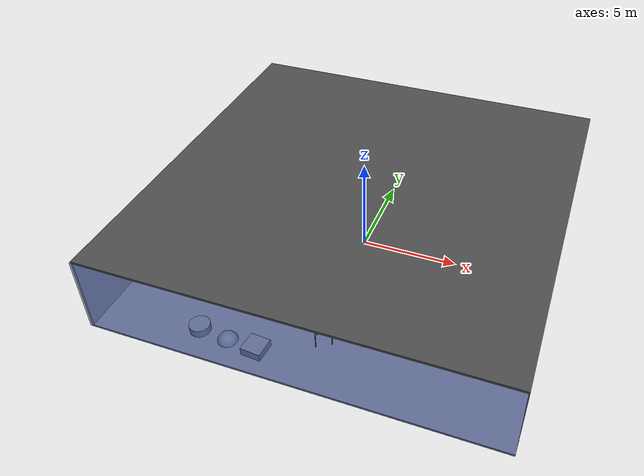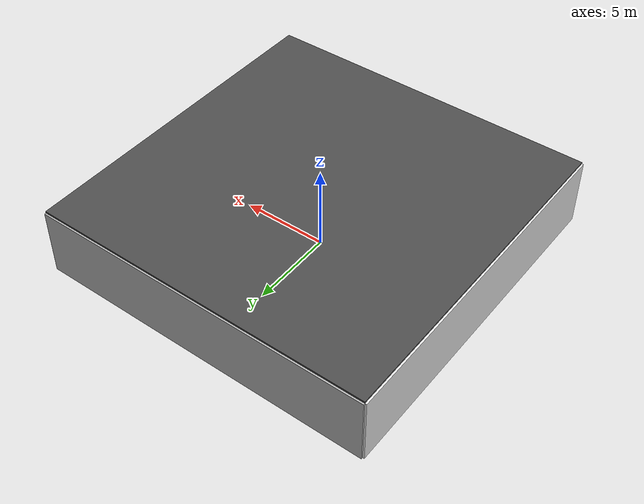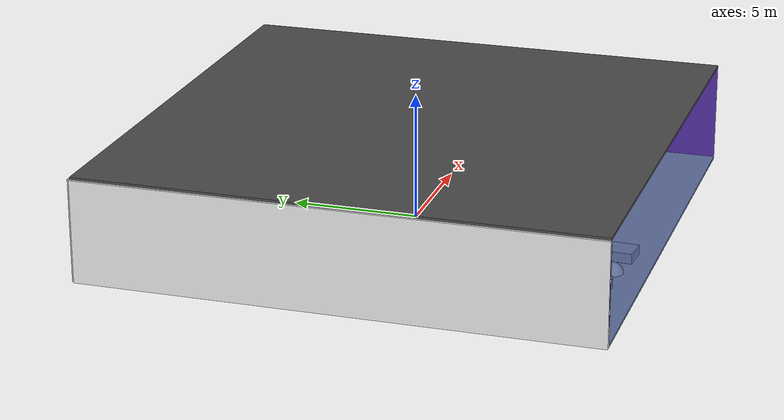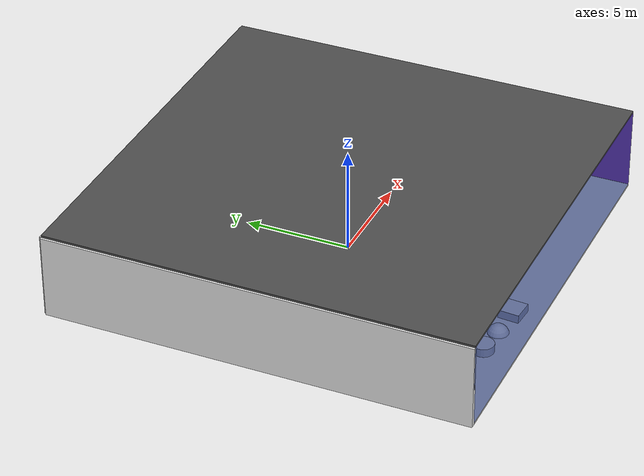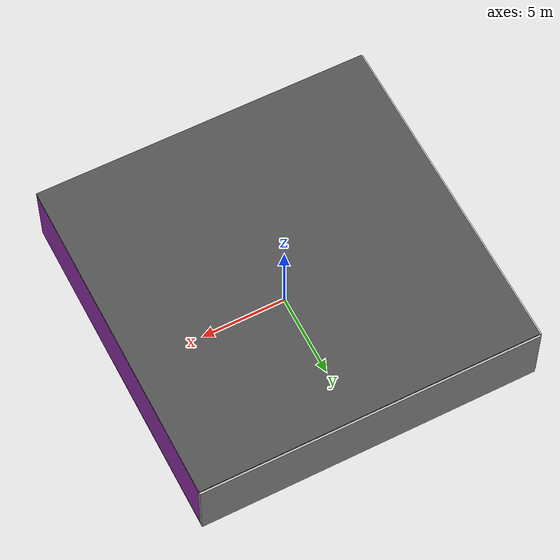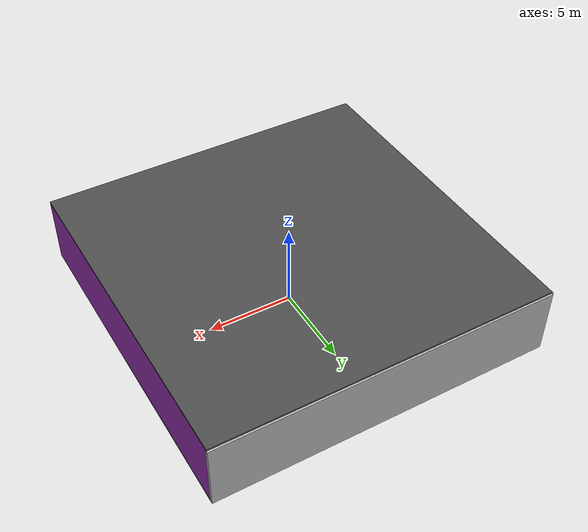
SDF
<sdf version="1.4">
 <world name="default">
  <physics type="ode">
   <max_step_size>0.001</max_step_size>
   <real_time_factor>1</real_time_factor>
   <real_time_update_rate>1000</real_time_update_rate>
   <gravity>0 0 -9.8</gravity>
  </physics>
  <scene><ambient>0.4 0.4 0.4 1</ambient><background>0.7 0.7 0.7 1</background><shadows>1</shadows></scene>
  <model name="Surrounding">
   <static>1</static>
   <link name="Ceiling">
    <collision name="Ceiling_Collision"><geometry><box><size>20 20 0.1</size></box></geometry></collision>
    <visual name="Ceiling_Visual">
     <geometry><box><size>20 20 0.1</size></box></geometry>
     <material>
      <script><uri>file://media/materials/scripts/gazebo.material</uri><name>Gazebo/DarkGrey</name></script>
     </material>
    </visual>
    <pose>0 0 4.05 0 0 0</pose>
   </link>
   <link name="Wall_South">
    <collision name="Wall_South_Collision">
     <geometry><box><size>20 0 4</size></box></geometry>
     <pose>0 0 2 0 -0 0</pose>
    </collision>
    <visual name="Wall_South_Visual">
     <pose>0 0 2 0 -0 0</pose>
     <geometry><box><size>20 0 4</size></box></geometry>
     <material>
      <script><uri>file://media/materials/scripts/gazebo.material</uri><name>Gazebo/BlueTransparent</name></script>
     </material>
    </visual>
    <velocity_decay><linear>0</linear><angular>0</angular></velocity_decay>
    <pose>0 -10 0 0 -0 0</pose>
   </link>
   <link name="Wall_East">
    <collision name="Wall_21_Collision">
     <geometry><box><size>20 0 4</size></box></geometry>
     <pose>0 0 2 0 -0 0</pose>
    </collision>
    <visual name="Wall_21_Visual">
     <pose>0 0 2 0 -0 0</pose>
     <geometry><box><size>20 0 4</size></box></geometry>
     <material>
      <script><uri>file://media/materials/scripts/gazebo.material</uri><name>Gazebo/Purple</name></script>
     </material>
    </visual>
    <velocity_decay><linear>0</linear><angular>0</angular></velocity_decay>
    <pose>10 0 0 0 -0 1.5708</pose>
   </link>
   <link name="Wall_North">
    <collision name="Wall_22_Collision">
     <geometry><box><size>20 0.2 4</size></box></geometry>
     <pose>0 0 2 0 -0 0</pose>
    </collision>
    <visual name="Wall_22_Visual">
     <pose>0 0 2 0 -0 0</pose>
     <geometry><box><size>20 0.2 4</size></box></geometry>
     <material>
      <script><uri>file://media/materials/scripts/gazebo.material</uri><name>Gazebo/CloudySky</name></script>
     </material>
    </visual>
    <velocity_decay><linear>0</linear><angular>0</angular></velocity_decay>
    <pose>0 10 0 0 -0 0</pose>
   </link>
   <link name="Wall_West">
    <collision name="Wall_23_Collision">
     <geometry><box><size>20 0.2 4</size></box></geometry>
     <pose>0 0 2 0 -0 0</pose>
    </collision>
    <visual name="Wall_23_Visual">
     <pose>0 0 2 0 -0 0</pose>
     <geometry><box><size>20 0.2 4</size></box></geometry>
     <material>
      <script><uri>file://media/materials/scripts/gazebo.material</uri><name>Gazebo/WhiteGlow</name></script>
     </material>
    </visual>
    <velocity_decay><linear>0</linear><angular>0</angular></velocity_decay>
    <pose>-10 0 0 0 0 -1.5708</pose>
   </link>
   <link name="Ground_link">
    <collision name="collision">
     <pose>0 0 .05 0 -0 0</pose>
     <geometry><box><size>20 20 0.1</size></box></geometry>
    </collision>
    <visual name="visual">
     <pose>0 0 .05 0 -0 0</pose>
     <geometry><box><size>20 20 0.1</size></box></geometry>
     <material>
      <script><uri>file://media/materials/scripts/gazebo.material</uri><name>Gazebo/CloudySky</name></script>
     </material>
    </visual>
   </link>
   <static>1</static>
  </model>
  <spherical_coordinates>
   <surface_model>EARTH_WGS84</surface_model>
   <latitude_deg>0</latitude_deg>
   <longitude_deg>0</longitude_deg>
   <elevation>0</elevation>
   <heading_deg>0</heading_deg>
  </spherical_coordinates>
  <light name="lightball_0" type="diffuse">
   <diffuse>0.8 0.8 0.8 1</diffuse>
   <specular>0.2 0.2 0.2 1</specular>
   <attenuation>
    <range>100</range>
    <constant>0.7</constant>
    <linear>0.01</linear>
    <quadratic>0.001</quadratic>
   </attenuation>
   <direction>-0.5 0.1 -0.9</direction>
   <pose>-0.96545309168 -0.755401192994 0.842638630809 0 0 0</pose>
  </light>
  <light name="lightball_1" type="diffuse">
   <diffuse>0.8 0.8 0.8 1</diffuse>
   <specular>0.2 0.2 0.2 1</specular>
   <attenuation>
    <range>100</range>
    <constant>0.7</constant>
    <linear>0.01</linear>
    <quadratic>0.001</quadratic>
   </attenuation>
   <direction>-0.5 0.1 -0.9</direction>
   <pose>-8.41131722383 -9.84102624976 3.89285093391 0 0 0</pose>
  </light>
  <light name="lightball_2" type="diffuse">
   <diffuse>0.8 0.8 0.8 1</diffuse>
   <specular>0.2 0.2 0.2 1</specular>
   <attenuation>
    <range>100</range>
    <constant>0.7</constant>
    <linear>0.01</linear>
    <quadratic>0.001</quadratic>
   </attenuation>
   <direction>-0.5 0.1 -0.9</direction>
   <pose>-1.53360866893 4.70353008135 2.87026435611 0 0 0</pose>
  </light>
  <light name="lightball_3" type="diffuse">
   <diffuse>0.8 0.8 0.8 1</diffuse>
   <specular>0.2 0.2 0.2 1</specular>
   <attenuation>
    <range>100</range>
    <constant>0.7</constant>
    <linear>0.01</linear>
    <quadratic>0.001</quadratic>
   </attenuation>
   <direction>-0.5 0.1 -0.9</direction>
   <pose>1.42232622898 -0.174910329536 1.30854168114 0 0 0</pose>
  </light>
  <light name="lightball_4" type="diffuse">
   <diffuse>0.8 0.8 0.8 1</diffuse>
   <specular>0.2 0.2 0.2 1</specular>
   <attenuation>
    <range>100</range>
    <constant>0.7</constant>
    <linear>0.01</linear>
    <quadratic>0.001</quadratic>
   </attenuation>
   <direction>-0.5 0.1 -0.9</direction>
   <pose>-1.76088937089 -1.54886287906 3.51439725264 0 0 0</pose>
  </light>
  <light name="lightball_5" type="diffuse">
   <diffuse>0.8 0.8 0.8 1</diffuse>
   <specular>0.2 0.2 0.2 1</specular>
   <attenuation>
    <range>100</range>
    <constant>0.7</constant>
    <linear>0.01</linear>
    <quadratic>0.001</quadratic>
   </attenuation>
   <direction>-0.5 0.1 -0.9</direction>
   <pose>-9.42797345507 -4.78476580257 1.17919871786 0 0 0</pose>
  </light>
  <light name="lightball_6" type="diffuse">
   <diffuse>0.8 0.8 0.8 1</diffuse>
   <specular>0.2 0.2 0.2 1</specular>
   <attenuation>
    <range>100</range>
    <constant>0.7</constant>
    <linear>0.01</linear>
    <quadratic>0.001</quadratic>
   </attenuation>
   <direction>-0.5 0.1 -0.9</direction>
   <pose>-7.94568962595 9.1109294531 2.52761606473 0 0 0</pose>
  </light>
  <light name="lightball_7" type="diffuse">
   <diffuse>0.8 0.8 0.8 1</diffuse>
   <specular>0.2 0.2 0.2 1</specular>
   <attenuation>
    <range>100</range>
    <constant>0.7</constant>
    <linear>0.01</linear>
    <quadratic>0.001</quadratic>
   </attenuation>
   <direction>-0.5 0.1 -0.9</direction>
   <pose>4.91228192512 6.41109465792 2.69414485384 0 0 0</pose>
  </light>
  <light name="lightball_8" type="diffuse">
   <diffuse>0.8 0.8 0.8 1</diffuse>
   <specular>0.2 0.2 0.2 1</specular>
   <attenuation>
    <range>100</range>
    <constant>0.7</constant>
    <linear>0.01</linear>
    <quadratic>0.001</quadratic>
   </attenuation>
   <direction>-0.5 0.1 -0.9</direction>
   <pose>-2.96364640514 3.88337945413 2.45359109621 0 0 0</pose>
  </light>
  <light name="lightball_9" type="diffuse">
   <diffuse>0.8 0.8 0.8 1</diffuse>
   <specular>0.2 0.2 0.2 1</specular>
   <attenuation>
    <range>100</range>
    <constant>0.7</constant>
    <linear>0.01</linear>
    <quadratic>0.001</quadratic>
   </attenuation>
   <direction>-0.5 0.1 -0.9</direction>
   <pose>9.3214838143 -0.146834557594 2.60453961742 0 0 0</pose>
  </light>
  <light name="lightball_10" type="diffuse">
   <diffuse>0.8 0.8 0.8 1</diffuse>
   <specular>0.2 0.2 0.2 1</specular>
   <attenuation>
    <range>100</range>
    <constant>0.7</constant>
    <linear>0.01</linear>
    <quadratic>0.001</quadratic>
   </attenuation>
   <direction>-0.5 0.1 -0.9</direction>
   <pose>1.21728304143 1.98042491229 3.71308196748 0 0 0</pose>
  </light>
  <light name="lightball_11" type="diffuse">
   <diffuse>0.8 0.8 0.8 1</diffuse>
   <specular>0.2 0.2 0.2 1</specular>
   <attenuation>
    <range>100</range>
    <constant>0.7</constant>
    <linear>0.01</linear>
    <quadratic>0.001</quadratic>
   </attenuation>
   <direction>-0.5 0.1 -0.9</direction>
   <pose>1.24683173607 3.33580720476 2.07712914071 0 0 0</pose>
  </light>
  <light name="lightball_12" type="diffuse">
   <diffuse>0.8 0.8 0.8 1</diffuse>
   <specular>0.2 0.2 0.2 1</specular>
   <attenuation>
    <range>100</range>
    <constant>0.7</constant>
    <linear>0.01</linear>
    <quadratic>0.001</quadratic>
   </attenuation>
   <direction>-0.5 0.1 -0.9</direction>
   <pose>-7.96487095734 5.44472860591 0.790528831211 0 0 0</pose>
  </light>
  <light name="lightball_13" type="diffuse">
   <diffuse>0.8 0.8 0.8 1</diffuse>
   <specular>0.2 0.2 0.2 1</specular>
   <attenuation>
    <range>100</range>
    <constant>0.7</constant>
    <linear>0.01</linear>
    <quadratic>0.001</quadratic>
   </attenuation>
   <direction>-0.5 0.1 -0.9</direction>
   <pose>-5.66732212259 8.77751043368 3.80662389713 0 0 0</pose>
  </light>
  <include>
   <uri>model://textured_shapes</uri>
   <pose>-3.53874247109 -8.63019716452 0 0 0 1.49587344764</pose>
  </include>
  <include>
   <uri>model://robocup_3Dsim_goal</uri>
   <pose>-1.98147625759 1.1663031183 0 0 0 0.705109358723</pose>
  </include>
  <include><uri>model://cabinet</uri><pose>-1.07318890869 7.7770773868 0 0 0 2.14303353682</pose></include>
  <include><uri>model://table</uri><pose>0.398571597121 -6.86075780359 0 0 0 2.12151356832</pose></include>
  <include>
   <uri>model://robocup_3Dsim_goal</uri>
   <pose>2.00460317799 6.79011537812 0 0 0 2.06327320062</pose>
  </include>
 </world>
</sdf>

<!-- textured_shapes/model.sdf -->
<sdf version="1.6">
  <model name="textured_shapes">
    <pose>0 0 0.5 0 0 0</pose>
    <link name="box">
      <pose>0 -1.5 0 0 0 0</pose>
      <collision name="collision">
        <geometry>
          <box>
            <size>1 1 1</size>
          </box>
        </geometry>
      </collision>
      <visual name="visual">
        <geometry>
          <box>
            <size>1 1 1</size>
          </box>
        </geometry>
        <material>
          <script>
            <uri>model://../model_source/models/textured_shapes/materials/scripts</uri>
            <uri>model://../model_source/models/textured_shapes/materials/textures</uri>
            <name>TexturedShape/Squares</name>
          </script>
        </material>
      </visual>
    </link>
    <link name="sphere">
      <collision name="collision">
        <geometry>
          <sphere>
            <radius>0.5</radius>
          </sphere>
        </geometry>
      </collision>
      <visual name="visual">
        <geometry>
          <sphere>
            <radius>0.5</radius>
          </sphere>
        </geometry>
        <material>
          <script>
            <uri>model://../model_source/models/textured_shapes/materials/scripts</uri>
            <uri>model://../model_source/models/textured_shapes/materials/textures</uri>
            <name>TexturedShape/Squares</name>
          </script>
        </material>
      </visual>
    </link>
    <link name="cylinder">
      <pose>0 1.5 0 0 0 0</pose>
      <collision name="collision">
        <geometry>
          <cylinder>
            <radius>0.5</radius>
            <length>1</length>
          </cylinder>
        </geometry>
      </collision>
      <visual name="visual">
        <geometry>
          <cylinder>
            <radius>0.5</radius>
            <length>1</length>
          </cylinder>
        </geometry>
        <material>
          <script>
            <uri>model://../model_source/models/textured_shapes/materials/scripts</uri>
            <uri>model://../model_source/models/textured_shapes/materials/textures</uri>
            <name>TexturedShape/Squares</name>
          </script>
        </material>
      </visual>
    </link>
  </model>
</sdf>

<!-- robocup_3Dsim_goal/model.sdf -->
<sdf version="1.5">
  <model name="robocup_3d_goal">
    <static>true</static>
    <link name="left_post">
      <pose>0 1.05 0.45 0 0 0</pose>
      <collision name="collision">
        <geometry>
          <cylinder>
            <radius>0.05</radius>
            <length>0.9</length>
          </cylinder>
        </geometry>
      </collision>
      <visual name="visual">
        <geometry>
          <cylinder>
            <radius>0.05</radius>
            <length>0.9</length>
          </cylinder>
        </geometry>
        <material>
          <script>
            <uri>file://media/materials/scripts/gazebo.material</uri>
            <name>Gazebo/ZincYellow</name>
          </script>
        </material>
      </visual>
    </link>
    <link name="left_support_horiz_lower">
      <pose>0.30 1.05 0.01 0 0 0</pose>
      <collision name="collision">
        <geometry>
          <box>
            <size>0.50 0.02 0.02</size>
          </box>
        </geometry>
      </collision>
      <visual name="visual">
        <geometry>
          <box>
            <size>0.50 0.02 0.02</size>
          </box>
        </geometry>
        <material>
          <script>
            <uri>file://media/materials/scripts/gazebo.material</uri>
            <name>Gazebo/White</name>
          </script>
        </material>
      </visual>
    </link>
    <link name="left_support_horiz_upper">
      <pose>0.30 1.05 0.79 0 0 0</pose>
      <collision name="collision">
        <geometry>
          <box>
            <size>0.50 0.02 0.02</size>
          </box>
        </geometry>
      </collision>
      <visual name="visual">
        <geometry>
          <box>
            <size>0.50 0.02 0.02</size>
          </box>
        </geometry>
        <material>
          <script>
            <uri>file://media/materials/scripts/gazebo.material</uri>
            <name>Gazebo/White</name>
          </script>
        </material>
      </visual>
    </link>
    <link name="left_support_vertical">
      <pose>0.56 1.05 0.4 0 1.5708 0</pose>
      <collision name="collision">
        <geometry>
          <box>
            <size>0.80 0.02 0.02</size>
          </box>
        </geometry>
      </collision>
      <visual name="visual">
        <geometry>
          <box>
            <size>0.80 0.02 0.02</size>
          </box>
        </geometry>
        <material>
          <script>
            <uri>file://media/materials/scripts/gazebo.material</uri>
            <name>Gazebo/White</name>
          </script>
        </material>
      </visual>
    </link>
    <link name="right_support_horiz_lower">
      <pose>0.30 -1.05 0.01 0 0 0</pose>
      <collision name="collision">
        <geometry>
          <box>
            <size>0.50 0.02 0.02</size>
          </box>
        </geometry>
      </collision>
      <visual name="visual">
        <geometry>
          <box>
            <size>0.50 0.02 0.02</size>
          </box>
        </geometry>
        <material>
          <script>
            <uri>file://media/materials/scripts/gazebo.material</uri>
            <name>Gazebo/White</name>
          </script>
        </material>
      </visual>
    </link>
    <link name="right_support_horiz_upper">
      <pose>0.30 -1.05 0.79 0 0 0</pose>
      <collision name="collision">
        <geometry>
          <box>
            <size>0.50 0.02 0.02</size>
          </box>
        </geometry>
      </collision>
      <visual name="visual">
        <geometry>
          <box>
            <size>0.50 0.02 0.02</size>
          </box>
        </geometry>
        <material>
          <script>
            <uri>file://media/materials/scripts/gazebo.material</uri>
            <name>Gazebo/White</name>
          </script>
        </material>
      </visual>
    </link>
    <link name="right_support_vertical">
      <pose>0.56 -1.05 0.4 0 1.5708 0</pose>
      <collision name="collision">
        <geometry>
          <box>
            <size>0.80 0.02 0.02</size>
          </box>
        </geometry>
      </collision>
      <visual name="visual">
        <geometry>
          <box>
            <size>0.80 0.02 0.02</size>
          </box>
        </geometry>
        <material>
          <script>
            <uri>file://media/materials/scripts/gazebo.material</uri>
            <name>Gazebo/White</name>
          </script>
        </material>
      </visual>
    </link>
    <link name="center_support_horiz_lower">
      <pose>0.56 0 0.01 0 1.5708 0</pose>
      <collision name="collision">
        <geometry>
          <box>
            <size>0.02 2.08 0.02</size>
          </box>
        </geometry>
      </collision>
      <visual name="visual">
        <geometry>
          <box>
            <size>0.02 2.08 0.02</size>
          </box>
        </geometry>
        <material>
          <script>
            <uri>file://media/materials/scripts/gazebo.material</uri>
            <name>Gazebo/White</name>
          </script>
        </material>
      </visual>
    </link>
    <link name="center_support_horiz_upper">
      <pose>0.56 0 0.79 0 1.5708 0</pose>
      <collision name="collision">
        <geometry>
          <box>
            <size>0.02 2.08 0.02</size>
          </box>
        </geometry>
      </collision>
      <visual name="visual">
        <geometry>
          <box>
            <size>0.02 2.08 0.02</size>
          </box>
        </geometry>
        <material>
          <script>
            <uri>file://media/materials/scripts/gazebo.material</uri>
            <name>Gazebo/White</name>
          </script>
        </material>
      </visual>
    </link>
    <link name="right_post">
      <pose>0 -1.05 0.45 0 0 0</pose>
      <collision name="collision">
        <geometry>
          <cylinder>
            <radius>0.05</radius>
            <length>0.9</length>
          </cylinder>
        </geometry>
      </collision>
      <visual name="visual">
        <geometry>
          <cylinder>
            <radius>0.05</radius>
            <length>0.9</length>
          </cylinder>
        </geometry>
        <material>
          <script>
            <uri>file://media/materials/scripts/gazebo.material</uri>
            <name>Gazebo/ZincYellow</name>
          </script>
        </material>
      </visual>
    </link>
    <link name="crossbar">
      <pose>0 0 0.85 1.57 1.57 0</pose>
      <collision name="collision">
        <geometry>
          <cylinder>
            <radius>0.05</radius>
            <length>2.0</length>
          </cylinder>
        </geometry>
      </collision>
      <visual name="visual">
        <geometry>
          <cylinder>
            <radius>0.05</radius>
            <length>2.0</length>
          </cylinder>
        </geometry>
        <material>
          <script>
            <uri>file://media/materials/scripts/gazebo.material</uri>
            <name>Gazebo/ZincYellow</name>
          </script>
        </material>
      </visual>
    </link>
    <link name="center_net">
      <pose>0.56 0 0.40 0 0 0</pose>
      <collision name="collision">
        <geometry>
          <box>
            <size>0.01 2.1 0.80</size>
          </box>
        </geometry>
      </collision>
      <visual name="visual">
        <geometry>
          <box>
            <size>0.01 2.1 0.80</size>
          </box>
        </geometry>
        <material>
          <script>
            <uri>model://../model_source/models/robocup09_spl_field/materials/scripts/</uri>
            <uri>model://../model_source/models/robocup09_spl_field/materials/textures/</uri>
            <name>RoboCup/Net</name>
          </script>
        </material>
      </visual>
    </link>
    <link name="left_net">
      <pose>0.30 1.05 0.40 0 0 0</pose>
      <collision name="collision">
        <geometry>
          <box>
            <size>0.50 0.01 0.76</size>
          </box>
        </geometry>
      </collision>
      <visual name="visual">
        <geometry>
          <box>
            <size>0.50 0.01 0.76</size>
          </box>
        </geometry>
        <material>
          <script>
            <uri>model://../model_source/models/robocup09_spl_field/materials/scripts/</uri>
            <uri>model://../model_source/models/robocup09_spl_field/materials/textures/</uri>
            <name>RoboCup/Net</name>
          </script>
        </material>
      </visual>
    </link>
    <link name="right_net">
      <pose>0.30 -1.05 0.40 0 0 0</pose>
      <collision name="collision">
        <geometry>
          <box>
            <size>0.50 0.01 0.76</size>
          </box>
        </geometry>
      </collision>
      <visual name="visual">
        <geometry>
          <box>
            <size>0.50 0.01 0.76</size>
          </box>
        </geometry>
        <material>
          <script>
            <uri>model://../model_source/models/robocup09_spl_field/materials/scripts/</uri>
            <uri>model://../model_source/models/robocup09_spl_field/materials/textures/</uri>
            <name>RoboCup/Net</name>
          </script>
        </material>
      </visual>
    </link>
  </model>
</sdf>

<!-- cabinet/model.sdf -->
<sdf version="1.5">
  <model name="cabinet">
    <static>true</static>
    <link name="cabinet_bottom_plate">
      <inertial>
        <pose>0 0 -1 0 0 0</pose>
        <inertia>
          <ixx>2.050000</ixx>
          <ixy>0</ixy>
          <ixz>0</ixz>
          <iyy>2.050000</iyy>
          <iyz>0</iyz>
          <izz>2.050000</izz>
        </inertia>
        <mass>25.000000</mass>
      </inertial>
      <collision name="cabinet_bottom_plate_geom">
        <pose>0 0 0.010000 0 0 0</pose>
        <geometry>
          <box>
            <size>0.450000 0.450000 0.020000</size>
          </box>
        </geometry>
      </collision>
      <visual name="cabinet_bottom_plate_geom_visual">
        <pose>0 0 0.010000 0 0 0</pose>
        <geometry>
          <box>
            <size>0.450000 0.450000 0.020000</size>
          </box>
        </geometry>
        <material>
          <script>
            <uri>model://media/materials/scripts/gazebo.material</uri>
            <name>Gazebo/Wood</name>
          </script>
        </material>
      </visual>
      <collision name="cabinet_bottom_plate_geom_cabinet_back_plate">
        <pose>0.235000 0 0.510000 0 0 0</pose>
        <geometry>
          <box>
            <size>0.020000 0.450000 1.020000</size>
          </box>
        </geometry>
      </collision>
      <visual name="cabinet_bottom_plate_geom_cabinet_back_plate_visual">
        <pose>0.235000 0 0.510000 0 0 0</pose>
        <geometry>
          <box>
            <size>0.020000 0.450000 1.020000</size>
          </box>
        </geometry>
        <material>
          <script>
            <uri>model://media/materials/scripts/gazebo.material</uri>
            <name>Gazebo/Wood</name>
          </script>
        </material>
      </visual>
      <collision name="cabinet_bottom_plate_geom_cabinet_left_plate">
        <pose>0 0.235000 0.510000 0 0 0</pose>
        <geometry>
          <box>
            <size>0.450000 0.020000 1.020000</size>
          </box>
        </geometry>
      </collision>
      <visual name="cabinet_bottom_plate_geom_cabinet_left_plate_visual">
        <pose>0 0.235000 0.510000 0 0 0</pose>
        <geometry>
          <box>
            <size>0.450000 0.020000 1.020000</size>
          </box>
        </geometry>
        <material>
          <script>
            <uri>model://media/materials/scripts/gazebo.material</uri>
            <name>Gazebo/Wood</name>
          </script>
        </material>
      </visual>
      <collision name="cabinet_bottom_plate_geom_cabinet_middle_plate">
        <pose>0 0 0.510000 0 0 0</pose>
        <geometry>
          <box>
            <size>0.450000 0.450000 0.020000</size>
          </box>
        </geometry>
      </collision>
      <visual name="cabinet_bottom_plate_geom_cabinet_middle_plate_visual">
        <pose>0 0 0.510000 0 0 0</pose>
        <geometry>
          <box>
            <size>0.450000 0.450000 0.020000</size>
          </box>
        </geometry>
        <material>
          <script>
            <uri>model://media/materials/scripts/gazebo.material</uri>
            <name>Gazebo/Wood</name>
          </script>
        </material>
      </visual>
      <collision name="cabinet_bottom_plate_geom_cabinet_right_plate">
        <pose>0 -0.235000 0.510000 0 0 0</pose>
        <geometry>
          <box>
            <size>0.450000 0.020000 1.020000</size>
          </box>
        </geometry>
      </collision>
      <visual name="cabinet_bottom_plate_geom_cabinet_right_plate_visual">
        <pose>0 -0.235000 0.510000 0 0 0</pose>
        <geometry>
          <box>
            <size>0.450000 0.020000 1.020000</size>
          </box>
        </geometry>
        <material>
          <script>
            <uri>model://media/materials/scripts/gazebo.material</uri>
            <name>Gazebo/Wood</name>
          </script>
        </material>
      </visual>
      <collision name="cabinet_bottom_plate_geom_cabinet_top_plate">
        <pose>0 0 1.010000 0 0 0</pose>
        <geometry>
          <box>
            <size>0.450000 0.450000 0.020000</size>
          </box>
        </geometry>
      </collision>
      <visual name="cabinet_bottom_plate_geom_cabinet_top_plate_visual">
        <pose>0 0 1.010000 0 0 0</pose>
        <geometry>
          <box>
            <size>0.450000 0.450000 0.020000</size>
          </box>
        </geometry>
        <material>
          <script>
            <uri>model://media/materials/scripts/gazebo.material</uri>
            <name>Gazebo/Wood</name>
          </script>
        </material>
      </visual>
    </link>
  </model>
</sdf>

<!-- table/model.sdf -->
<sdf version="1.5">
  <model name="table">
    <static>true</static>
    <link name="link">
      <collision name="surface">
        <pose>0 0 1.0 0 0 0</pose>
        <geometry>
          <box>
            <size>1.5 0.8 0.03</size>
          </box>
        </geometry>
        <surface>
          <friction>
            <ode>
              <mu>0.6</mu>
              <mu2>0.6</mu2>
            </ode>
          </friction>
        </surface>
      </collision>
      <visual name="visual1">
        <pose>0 0 1.0 0 0 0</pose>
        <geometry>
          <box>
            <size>1.5 0.8 0.03</size>
          </box>
        </geometry>
        <material>
          <script>
            <uri>model://media/materials/scripts/gazebo.material</uri>
            <name>Gazebo/Wood</name>
          </script>
        </material>
      </visual>
      <collision name="front_left_leg">
        <pose>0.68 0.38 0.5 0 0 0</pose>
        <geometry>
          <cylinder>
            <radius>0.02</radius>
            <length>1.0</length>
          </cylinder>
        </geometry>
      </collision>
      <visual name="front_left_leg">
        <pose>0.68 0.38 0.5 0 0 0</pose>
        <geometry>
          <cylinder>
            <radius>0.02</radius>
            <length>1.0</length>
          </cylinder>
        </geometry>
        <material>
          <script>
            <uri>model://media/materials/scripts/gazebo.material</uri>
            <name>Gazebo/Grey</name>
          </script>
        </material>
      </visual>
      <collision name="front_right_leg">
        <pose>0.68 -0.38 0.5 0 0 0</pose>
        <geometry>
          <cylinder>
            <radius>0.02</radius>
            <length>1.0</length>
          </cylinder>
        </geometry>
      </collision>
      <visual name="front_right_leg">
        <pose>0.68 -0.38 0.5 0 0 0</pose>
        <geometry>
          <cylinder>
            <radius>0.02</radius>
            <length>1.0</length>
          </cylinder>
        </geometry>
        <material>
          <script>
            <uri>model://media/materials/scripts/gazebo.material</uri>
            <name>Gazebo/Grey</name>
          </script>
        </material>
      </visual>
      <collision name="back_right_leg">
        <pose>-0.68 -0.38 0.5 0 0 0</pose>
        <geometry>
          <cylinder>
            <radius>0.02</radius>
            <length>1.0</length>
          </cylinder>
        </geometry>
      </collision>
      <visual name="back_right_leg">
        <pose>-0.68 -0.38 0.5 0 0 0</pose>
        <geometry>
          <cylinder>
            <radius>0.02</radius>
            <length>1.0</length>
          </cylinder>
        </geometry>
        <material>
          <script>
            <uri>model://media/materials/scripts/gazebo.material</uri>
            <name>Gazebo/Grey</name>
          </script>
        </material>
      </visual>
      <collision name="back_left_leg">
        <pose>-0.68 0.38 0.5 0 0 0</pose>
        <geometry>
          <cylinder>
            <radius>0.02</radius>
            <length>1.0</length>
          </cylinder>
        </geometry>
      </collision>
      <visual name="back_left_leg">
        <pose>-0.68 0.38 0.5 0 0 0</pose>
        <geometry>
          <cylinder>
            <radius>0.02</radius>
            <length>1.0</length>
          </cylinder>
        </geometry>
        <material>
          <script>
            <uri>model://media/materials/scripts/gazebo.material</uri>
            <name>Gazebo/Grey</name>
          </script>
        </material>
      </visual>
    </link>
  </model>
</sdf>
